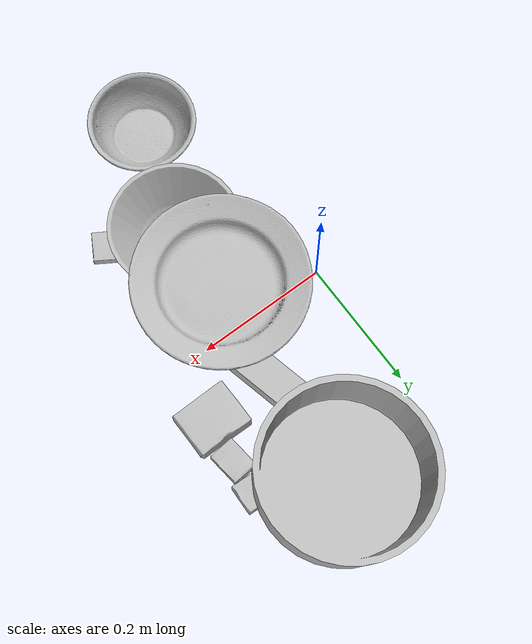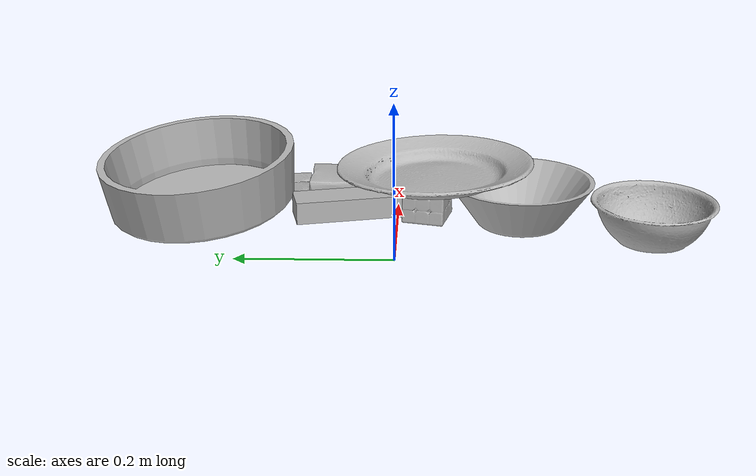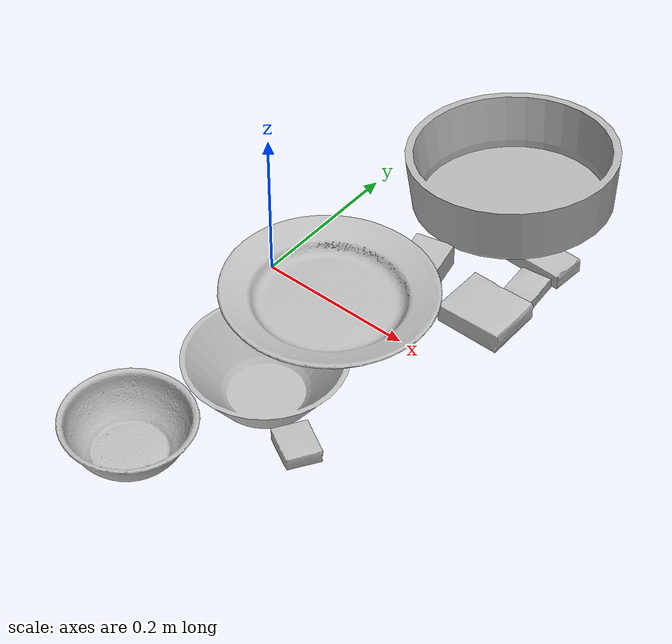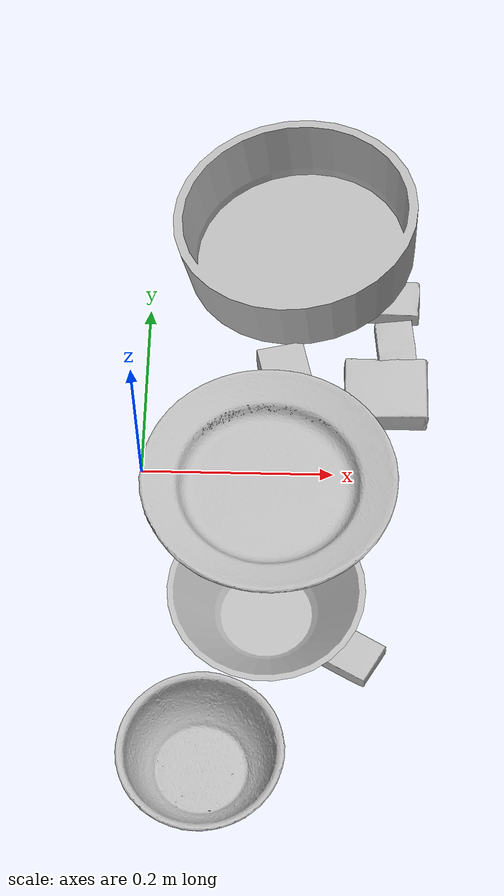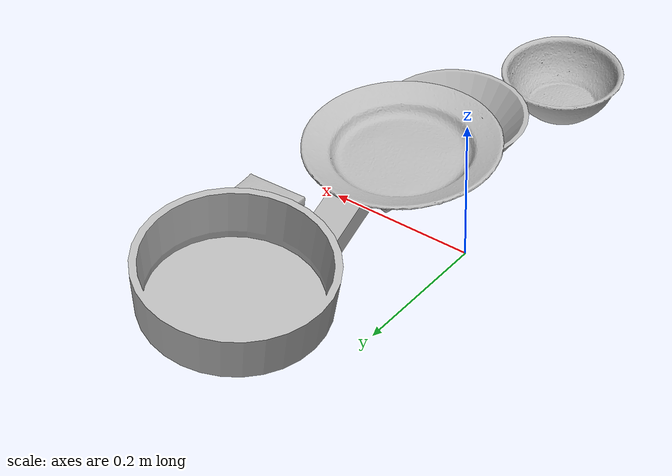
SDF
<sdf version="1.4">
  <world name="default">
    <light name="light1" type="point">
      <pose>0 0 1 0 0 0</pose>
      <diffuse>3 3 3 1</diffuse>
      <specular>3 3 3 1</specular>
    </light>
    <light name="light2" type="point">
      <pose>0 0.5 2 0 0 0</pose>
      <diffuse>1 1 1 1</diffuse>
      <specular>1 1 1 1</specular>
    </light>
    <light name="light3" type="point">
      <pose>0 0.5 2 0 0 0</pose>
      <diffuse>3 3 3 1</diffuse>
      <specular>3 3 3 1</specular>
    </light>
    <scene>
      <ambient>0.7 0.7 0.7</ambient>
    </scene>
    <model name="box1">
      <link name="link_box1">
        <collision name="default">
          <geometry>
            <mesh>
              <uri>model://sugar_box/collision_meshes/collision.obj</uri>
              <scale>0.5 0.5 0.5</scale>
            </mesh>
          </geometry>
          <surface>
            <friction>
              <ode>
                <mu>0.5</mu>
                <mu2>0.5</mu2>
              </ode>
            </friction>
          <contact>
        <ode>
            <max_vel>0</max_vel>
            <min_depth>0.0001</min_depth>
            <kp>1e8</kp>
        </ode>
    </contact></surface>
        </collision>
        <visual name="default">
          <geometry>
            <mesh>
              <uri>model://sugar_box/visual_meshes/visual.dae</uri>
              <scale>0.5 0.5 0.5</scale>
            </mesh>
          </geometry>
        </visual>
        <inertial>
          <mass>0.05968111753463745</mass>
          <pose>0.0005171863595023751 1.924554817378521e-05 -0.00018182402709499002 -0.00040462627153530444 0.0010506635220302928 0.002615378323275012</pose>
          <inertia>
            <ixx>1.2431535e-05</ixx>
            <iyy>4.0181283e-05</iyy>
            <izz>4.8101785e-05</izz>
            <ixy>0</ixy>
            <ixz>0</ixz>
            <iyz>0</iyz>
          </inertia>
        </inertial>
      </link>
      <pose>0.2481769323348999 0.20967014133930206 0.012325013056397438 0.03280368474464145 0.011063929769200755 3.103550309965729</pose>
    </model>
    <model name="box11">
      <link name="link_box11">
        <collision name="default">
          <geometry>
            <mesh>
              <uri>model://cracker_box/collision_meshes/collision.obj</uri>
              <scale>0.25 0.25 0.25</scale>
            </mesh>
          </geometry>
          <surface>
            <friction>
              <ode>
                <mu>0.5</mu>
                <mu2>0.5</mu2>
              </ode>
            </friction>
          <contact>
        <ode>
            <max_vel>0</max_vel>
            <min_depth>0.0001</min_depth>
            <kp>1e8</kp>
        </ode>
    </contact></surface>
        </collision>
        <visual name="default">
          <geometry>
            <mesh>
              <uri>model://cracker_box/visual_meshes/visual.dae</uri>
              <scale>0.25 0.25 0.25</scale>
            </mesh>
          </geometry>
        </visual>
        <inertial>
          <mass>0.04741516709327698</mass>
          <pose>0.0002366035187151283 6.358561950037256e-05 -0.0004257383698131889 -0.00031620780351981393 -0.01110649053153066 0.0025467950031323855</pose>
          <inertia>
            <ixx>7.537689e-06</ixx>
            <iyy>1.2446206e-05</iyy>
            <izz>1.7761875e-05</izz>
            <ixy>0</ixy>
            <ixz>0</ixz>
            <iyz>0</iyz>
          </inertia>
        </inertial>
      </link>
      <pose>0.2658713459968567 0.15650834143161774 0.009120450355112553 -0.011788048165160289 -0.007367099266008696 1.673740946370982</pose>
    </model>
    <model name="box2">
      <link name="link_box2">
        <collision name="default">
          <geometry>
            <mesh>
              <uri>model://jenga/collision_meshes/collision.obj</uri>
              <scale>1.0 1.0 1.0</scale>
            </mesh>
          </geometry>
          <surface>
            <friction>
              <ode>
                <mu>0.5</mu>
                <mu2>0.5</mu2>
              </ode>
            </friction>
          <contact>
        <ode>
            <max_vel>0</max_vel>
            <min_depth>0.0001</min_depth>
            <kp>1e8</kp>
        </ode>
    </contact></surface>
        </collision>
        <visual name="default">
          <geometry>
            <mesh>
              <uri>model://jenga/visual_meshes/visual.dae</uri>
              <scale>1.0 1.0 1.0</scale>
            </mesh>
          </geometry>
        </visual>
        <inertial>
          <mass>0.17569443583488464</mass>
          <pose>-2.502855807051674e-07 -0.00010250010382151231 -4.0923401684267446e-05 0.0 -7.342153480750062e-07 0.0</pose>
          <inertia>
            <ixx>4.8618913e-05</ixx>
            <iyy>0.00032944046</iyy>
            <izz>0.0003517057</izz>
            <ixy>0</ixy>
            <ixz>0</ixz>
            <iyz>0</iyz>
          </inertia>
        </inertial>
      </link>
      <pose>0.15878453850746155 0.06707318872213364 0.014999940991401672 2.0576087767414695e-05 8.18679471339581e-06 1.8051455249184416</pose>
    </model>
    <model name="box21">
      <link name="link_box21">
        <collision name="default">
          <geometry>
            <mesh>
              <uri>model://rubiks_cube/collision_meshes/collision.obj</uri>
              <scale>1.0 1.0 1.0</scale>
            </mesh>
          </geometry>
          <surface>
            <friction>
              <ode>
                <mu>0.5</mu>
                <mu2>0.5</mu2>
              </ode>
            </friction>
          <contact>
        <ode>
            <max_vel>0</max_vel>
            <min_depth>0.0001</min_depth>
            <kp>1e8</kp>
        </ode>
    </contact></surface>
        </collision>
        <visual name="default">
          <geometry>
            <mesh>
              <uri>model://rubiks_cube/visual_meshes/visual.dae</uri>
              <scale>1.0 1.0 1.0</scale>
            </mesh>
          </geometry>
        </visual>
        <inertial>
          <mass>0.16427944600582123</mass>
          <pose>2.6721041649580002e-05 5.2569666877388954e-05 -7.2643156272533815e-06 -0.05467299197426534 -0.0981400693449792 -0.034455479534688374</pose>
          <inertia>
            <ixx>9.0775415e-05</ixx>
            <iyy>9.0352085e-05</iyy>
            <izz>9.152764e-05</izz>
            <ixy>0</ixy>
            <ixz>0</ixz>
            <iyz>0</iyz>
          </inertia>
        </inertial>
      </link>
      <pose>0.14910869300365448 -0.03967428579926491 0.028677521273493767 -3.703279539491864e-05 -5.5593155364521535e-05 2.941559915271498</pose>
    </model>
    <model name="box3">
      <link name="link_box3">
        <collision name="default">
          <geometry>
            <mesh>
              <uri>model://gelatin_box/collision_meshes/collision.obj</uri>
              <scale>1.0 1.0 1.0</scale>
            </mesh>
          </geometry>
          <surface>
            <friction>
              <ode>
                <mu>0.5</mu>
                <mu2>0.5</mu2>
              </ode>
            </friction>
          <contact>
        <ode>
            <max_vel>0</max_vel>
            <min_depth>0.0001</min_depth>
            <kp>1e8</kp>
        </ode>
    </contact></surface>
        </collision>
        <visual name="default">
          <geometry>
            <mesh>
              <uri>model://gelatin_box/visual_meshes/visual.dae</uri>
              <scale>1.0 1.0 1.0</scale>
            </mesh>
          </geometry>
        </visual>
        <inertial>
          <mass>0.21197354793548584</mass>
          <pose>0.0004319618456065655 0.00011156872642459348 -0.0003640321083366871 -0.0010503719594585892 -0.004755818227500045 0.016440553882781303</pose>
          <inertia>
            <ixx>0.00014963602</ixx>
            <iyy>0.00010688423</iyy>
            <izz>0.00022777937</izz>
            <ixy>0</ixy>
            <ixz>0</ixz>
            <iyz>0</iyz>
          </inertia>
        </inertial>
      </link>
      <pose>0.25528016686439514 0.09136313199996948 0.015168314799666405 0.005597092246536369 -0.007304168258054755 1.5711825559052217</pose>
    </model>
    <model name="box31">
      <link name="link_box31">
        <collision name="default">
          <geometry>
            <mesh>
              <uri>model://pudding_box/collision_meshes/collision.obj</uri>
              <scale>0.5 0.5 0.5</scale>
            </mesh>
          </geometry>
          <surface>
            <friction>
              <ode>
                <mu>0.5</mu>
                <mu2>0.5</mu2>
              </ode>
            </friction>
          <contact>
        <ode>
            <max_vel>0</max_vel>
            <min_depth>0.0001</min_depth>
            <kp>1e8</kp>
        </ode>
    </contact></surface>
        </collision>
        <visual name="default">
          <geometry>
            <mesh>
              <uri>model://pudding_box/visual_meshes/visual.dae</uri>
              <scale>0.5 0.5 0.5</scale>
            </mesh>
          </geometry>
        </visual>
        <inertial>
          <mass>0.056796859949827194</mass>
          <pose>0.00024474109522998333 0.0004033942532259971 -0.0002594413817860186 0.005213102251005844 -0.00660379641961884 0.02007983447872704</pose>
          <inertia>
            <ixx>1.605148e-05</ixx>
            <iyy>1.0799551e-05</iyy>
            <izz>2.3704206e-05</izz>
            <ixy>0</ixy>
            <ixz>0</ixz>
            <iyz>0</iyz>
          </inertia>
        </inertial>
      </link>
      <pose>0.21946625411510468 -0.20935802161693573 0.009863032028079033 0.022400167690018933 -0.01136548058527256 -2.1041231527960504</pose>
    </model>
    <model name="plate1">
      <link name="link_plate1">
        <collision name="default">
          <geometry>
            <mesh>
              <uri>model://pan_tefal/collision_meshes/collision.obj</uri>
              <scale>1.0 1.0 1.0</scale>
            </mesh>
          </geometry>
          <surface>
            <friction>
              <ode>
                <mu>0.5</mu>
                <mu2>0.5</mu2>
              </ode>
            </friction>
          <contact>
        <ode>
            <max_vel>0</max_vel>
            <min_depth>0.0001</min_depth>
            <kp>1e8</kp>
        </ode>
    </contact></surface>
        </collision>
        <visual name="default">
          <geometry>
            <mesh>
              <uri>model://pan_tefal/visual_meshes/visual.dae</uri>
              <scale>1.0 1.0 1.0</scale>
            </mesh>
          </geometry>
        </visual>
        <inertial>
          <mass>1.4752264022827148</mass>
          <pose>-0.0001800210156943649 3.278951771790162e-05 -0.008514936082065105 0.0008190241607511121 -0.0003301478392365544 -0.33184922825406304</pose>
          <inertia>
            <ixx>0.010183416</ixx>
            <iyy>0.01024907</iyy>
            <izz>0.018745707</izz>
            <ixy>0</ixy>
            <ixz>0</ixz>
            <iyz>0</iyz>
          </inertia>
        </inertial>
      </link>
      <pose>0.15890221297740936 0.2701333463191986 0.051660701632499695 0.07682687758354709 -0.10011725313309729 -1.265859503970079</pose>
    </model>
    <model name="bowl1">
      <link name="link_bowl1">
        <collision name="default">
          <geometry>
            <mesh>
              <uri>model://bowl/collision_meshes/collision.obj</uri>
              <scale>1.0 1.0 1.0</scale>
            </mesh>
          </geometry>
          <surface>
            <friction>
              <ode>
                <mu>0.5</mu>
                <mu2>0.5</mu2>
              </ode>
            </friction>
          <contact>
        <ode>
            <max_vel>0</max_vel>
            <min_depth>0.0001</min_depth>
            <kp>1e8</kp>
        </ode>
    </contact></surface>
        </collision>
        <visual name="default">
          <geometry>
            <mesh>
              <uri>model://bowl/visual_meshes/visual.dae</uri>
              <scale>1.0 1.0 1.0</scale>
            </mesh>
          </geometry>
        </visual>
        <inertial>
          <mass>0.13335108757019043</mass>
          <pose>0.00020445126574486494 -0.0010302079608663917 -0.0008042646804824471 -0.01576397865263616 0.014546905041115984 0.7140477796865206</pose>
          <inertia>
            <ixx>0.000306318</ixx>
            <iyy>0.00029947367</iyy>
            <izz>0.00051533245</izz>
            <ixy>0</ixy>
            <ixz>0</ixz>
            <iyz>0</iyz>
          </inertia>
        </inertial>
      </link>
      <pose>0.07581666111946106 -0.33065083622932434 0.027779990807175636 1.2439720004087109e-08 1.4019089581773636e-08 2.3788497737309493</pose>
    </model>
    <model name="plate2">
      <link name="link_plate2">
        <collision name="default">
          <geometry>
            <mesh>
              <uri>model://plate/collision_meshes/collision.obj</uri>
              <scale>1.0 1.0 1.0</scale>
            </mesh>
          </geometry>
          <surface>
            <friction>
              <ode>
                <mu>0.5</mu>
                <mu2>0.5</mu2>
              </ode>
            </friction>
          <contact>
        <ode>
            <max_vel>0</max_vel>
            <min_depth>0.0001</min_depth>
            <kp>1e8</kp>
        </ode>
    </contact></surface>
        </collision>
        <visual name="default">
          <geometry>
            <mesh>
              <uri>model://plate/visual_meshes/visual.dae</uri>
              <scale>1.0 1.0 1.0</scale>
            </mesh>
          </geometry>
        </visual>
        <inertial>
          <mass>0.1753290891647339</mass>
          <pose>-0.0006044620531611145 0.0002782598021440208 -0.0010561987292021513 0.0022188066246853514 -0.003225466953145419 0.45260347799947726</pose>
          <inertia>
            <ixx>0.00082019315</ixx>
            <iyy>0.00081234827</iyy>
            <izz>0.0016041752</izz>
            <ixy>0</ixy>
            <ixz>0</ixz>
            <iyz>0</iyz>
          </inertia>
        </inertial>
      </link>
      <pose>0.13437335193157196 -0.050414666533470154 0.0723077580332756 -0.03747638548601175 0.016960094213481502 0.1017306144833281</pose>
    </model>
    <model name="bowl2">
      <link name="link_bowl2">
        <collision name="default">
          <geometry>
            <mesh>
              <uri>model://bowl_a/collision_meshes/collision.obj</uri>
              <scale>1.0 1.0 1.0</scale>
            </mesh>
          </geometry>
          <surface>
            <friction>
              <ode>
                <mu>0.5</mu>
                <mu2>0.5</mu2>
              </ode>
            </friction>
          <contact>
        <ode>
            <max_vel>0</max_vel>
            <min_depth>0.0001</min_depth>
            <kp>1e8</kp>
        </ode>
    </contact></surface>
        </collision>
        <visual name="default">
          <geometry>
            <mesh>
              <uri>model://bowl_a/visual_meshes/visual.dae</uri>
              <scale>1.0 1.0 1.0</scale>
            </mesh>
          </geometry>
        </visual>
        <inertial>
          <mass>0.4813200831413269</mass>
          <pose>0.0002786751138046384 4.731064836960286e-05 -0.0013765294570475817 -0.0009805320964546374 -0.0010938264681851768 -0.19124047933057892</pose>
          <inertia>
            <ixx>0.0013703406</ixx>
            <iyy>0.0013787533</iyy>
            <izz>0.0024372027</izz>
            <ixy>0</ixy>
            <ixz>0</ixz>
            <iyz>0</iyz>
          </inertia>
        </inertial>
      </link>
      <pose>0.13470859825611115 -0.16422139108181 0.030382540076971054 -2.7080934212353677e-05 -8.054714375804315e-06 2.7087017133434763</pose>
    </model>
  <physics type="ode">
      <max_contacts>50</max_contacts>
      <ode>
        <solver>
          <type>quick</type>
          <iters>75</iters>
        </solver>
        <constraints>
          <contact_max_correcting_vel>0</contact_max_correcting_vel>
          <contact_surface_layer>0</contact_surface_layer>
        </constraints>
      </ode>
    </physics></world>
</sdf>
